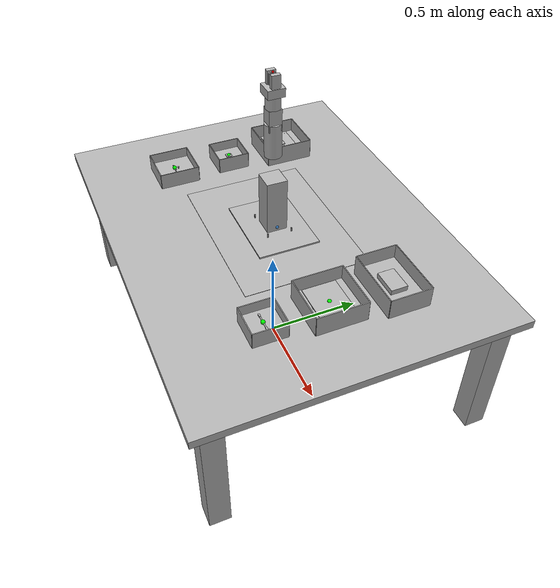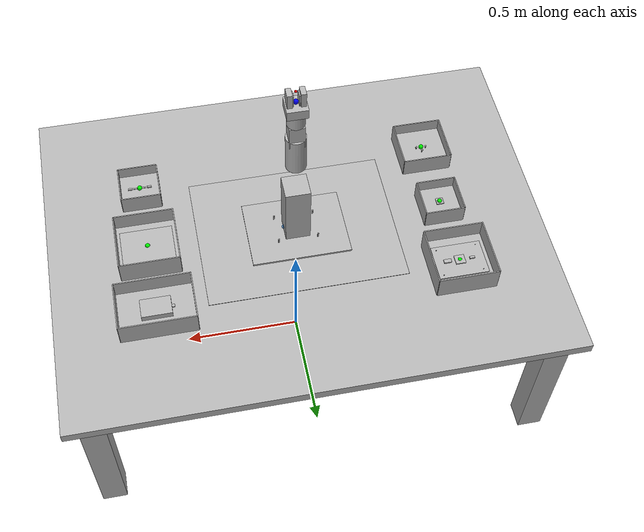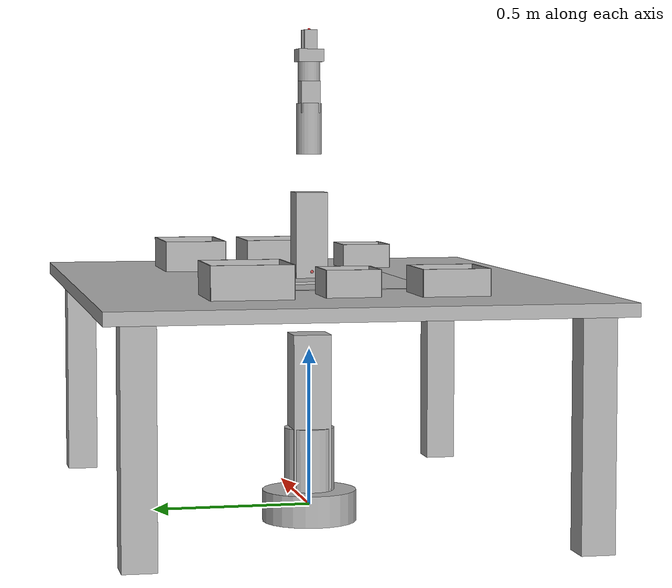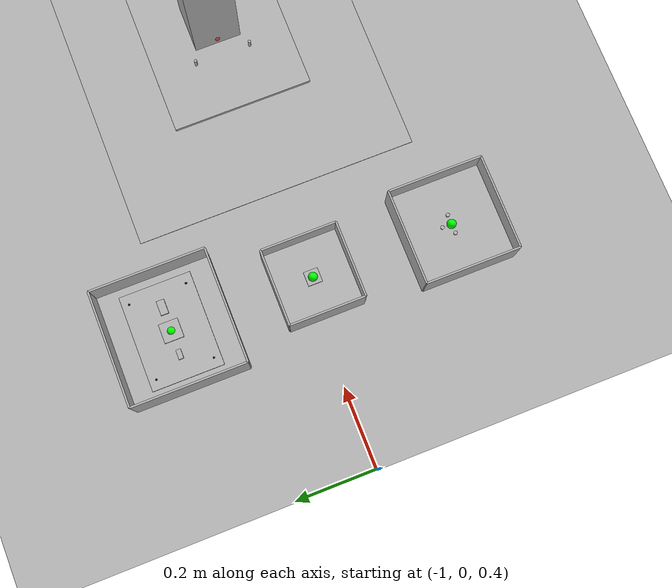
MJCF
<?xml version="1.0" ?>
<mujoco model="complete_assembly_system">
  <compiler angle="radian" coordinate="local" inertiafromgeom="true"/>
  <option timestep="0.002" gravity="0 0 -9.81" iterations="50" solver="Newton" tolerance="1e-10"/>

  <default>
    <joint armature="1" damping="10" limited="true"/>
    <geom contype="1" conaffinity="1" friction="1 0.5 0.5" rgba="0.7 0.7 0.7 1"/>
    <motor ctrllimited="true" ctrlrange="-1 1"/>
  </default>

  <visual>
    <headlight diffuse="0.5 0.5 0.5" ambient="0.3 0.3 0.3" specular="0 0 0"/>
    <rgba haze="0.15 0.25 0.35 1"/>
    <global azimuth="120" elevation="-20"/>
  </visual>

  <!-- Include the robot arm model -->
  <include file="robot_arm.xml"/>

  <!-- Include the assembly station model -->
  <include file="assembly_station.xml"/>

  <!-- Additional cameras for visualization -->
  <worldbody>
    <camera name="overview" pos="2 -2 3" xyaxes="0.5 0.866 0 -0.433 0.25 0.866" mode="fixed"/>
    <camera name="side_view" pos="0 -2.5 1.5" xyaxes="1 0 0 0 0 1" mode="fixed"/>
    <camera name="top_view" pos="0 0 3" xyaxes="1 0 0 0 1 0" mode="fixed"/>
    <camera name="gripper_view" pos="0 0 0" xyaxes="1 0 0 0 0 1" mode="track" body="gripper_mount"/>

    <!-- Additional lighting -->
    <light name="spotlight1" pos="1 1 3" dir="-0.5 -0.5 -1" diffuse="0.8 0.8 0.8" specular="0.2 0.2 0.2" cutoff="45"/>
    <light name="spotlight2" pos="-1 -1 3" dir="0.5 0.5 -1" diffuse="0.8 0.8 0.8" specular="0.2 0.2 0.2" cutoff="45"/>
  </worldbody>

  <!-- Contact pairs for precise interaction -->
  <contact>
    <pair geom1="gripper_left_pad" geom2="pcb_board" condim="6" friction="2 1 1"/>
    <pair geom1="gripper_right_pad" geom2="pcb_board" condim="6" friction="2 1 1"/>
    <pair geom1="gripper_left_pad" geom2="cpu_chip" condim="6" friction="2 1 1"/>
    <pair geom1="gripper_right_pad" geom2="cpu_chip" condim="6" friction="2 1 1"/>
    <pair geom1="gripper_left_pad" geom2="battery_pack" condim="6" friction="2 1 1"/>
    <pair geom1="gripper_right_pad" geom2="battery_pack" condim="6" friction="2 1 1"/>
    <pair geom1="gripper_left_pad" geom2="cover_top" condim="6" friction="2 1 1"/>
    <pair geom1="gripper_right_pad" geom2="cover_top" condim="6" friction="2 1 1"/>
    <pair geom1="gripper_left_pad" geom2="cable_body" condim="6" friction="2 1 1"/>
    <pair geom1="gripper_right_pad" geom2="cable_body" condim="6" friction="2 1 1"/>

    <!-- Screw interactions -->
    <pair geom1="gripper_left_pad" geom2="screw1_head" condim="6" friction="2 1 1"/>
    <pair geom1="gripper_right_pad" geom2="screw1_head" condim="6" friction="2 1 1"/>
    <pair geom1="gripper_left_pad" geom2="screw2_head" condim="6" friction="2 1 1"/>
    <pair geom1="gripper_right_pad" geom2="screw2_head" condim="6" friction="2 1 1"/>
    <pair geom1="gripper_left_pad" geom2="screw3_head" condim="6" friction="2 1 1"/>
    <pair geom1="gripper_right_pad" geom2="screw3_head" condim="6" friction="2 1 1"/>
    <pair geom1="gripper_left_pad" geom2="screw4_head" condim="6" friction="2 1 1"/>
    <pair geom1="gripper_right_pad" geom2="screw4_head" condim="6" friction="2 1 1"/>

    <!-- Component-to-component interactions -->
    <pair geom1="cpu_pins" geom2="cpu_socket" condim="6" friction="0.5 0.5 0.5"/>
    <pair geom1="battery_connector_male" geom2="battery_connector" condim="6" friction="0.8 0.8 0.8"/>
    <pair geom1="cable_connector1" geom2="cable_connector" condim="6" friction="0.8 0.8 0.8"/>

    <!-- Screw-to-hole interactions -->
    <pair geom1="screw1_shaft" geom2="mount_post1" condim="6" friction="0.5 0.5 0.5"/>
    <pair geom1="screw2_shaft" geom2="mount_post2" condim="6" friction="0.5 0.5 0.5"/>
    <pair geom1="screw3_shaft" geom2="mount_post3" condim="6" friction="0.5 0.5 0.5"/>
    <pair geom1="screw4_shaft" geom2="mount_post4" condim="6" friction="0.5 0.5 0.5"/>
  </contact>

  <!-- Equality constraints for assembled components -->
  <equality>
    <!-- These will be activated programmatically when components are assembled -->
  </equality>
</mujoco>

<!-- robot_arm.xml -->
<mujoco model="robot_arm">
  <compiler angle="radian" coordinate="local" inertiafromgeom="true"/>
  <option timestep="0.002" gravity="0 0 -9.81" iterations="50" solver="Newton" tolerance="1e-10"/>

  <default>
    <joint armature="1" damping="10" limited="true"/>
    <geom contype="1" conaffinity="1" friction="1 0.5 0.5" rgba="0.7 0.7 0.7 1"/>
    <motor ctrllimited="true" ctrlrange="-1 1"/>
  </default>

  <asset>
    <material name="arm_metal" rgba="0.8 0.8 0.9 1" metallic="0.9" roughness="0.3"/>
    <material name="joint_black" rgba="0.2 0.2 0.2 1" metallic="0.8" roughness="0.4"/>
    <material name="gripper_red" rgba="0.9 0.2 0.2 1" metallic="0.7" roughness="0.3"/>
    <material name="sensor_blue" rgba="0.2 0.2 0.9 1" metallic="0.5" roughness="0.2"/>
  </asset>

  <worldbody>
    <!-- Robot Base -->
    <body name="base" pos="0 0 0">
      <geom name="base_plate" type="cylinder" size="0.15 0.05" material="joint_black" mass="20"/>
      <inertial pos="0 0 0" mass="20" diaginertia="0.5 0.5 0.5"/>

      <!-- Joint 1: Shoulder Pan -->
      <body name="shoulder_pan" pos="0 0 0.1">
        <joint name="j1_shoulder_pan" type="hinge" axis="0 0 1" range="-3.14159 3.14159" damping="20"/>
        <geom name="shoulder_pan_link" type="cylinder" size="0.08 0.15" material="arm_metal" mass="5"/>

        <!-- Joint 2: Shoulder Tilt -->
        <body name="shoulder_tilt" pos="0 0 0.2">
          <joint name="j2_shoulder_tilt" type="hinge" axis="0 1 0" range="-2.356 0.785" damping="20"/>
          <geom name="shoulder_tilt_link" type="box" size="0.06 0.06 0.25" material="arm_metal" mass="4"/>

          <!-- Joint 3: Elbow -->
          <body name="elbow" pos="0 0 0.5">
            <joint name="j3_elbow" type="hinge" axis="0 1 0" range="-2.967 2.967" damping="15"/>
            <geom name="elbow_link" type="box" size="0.05 0.05 0.2" material="arm_metal" mass="3"/>

            <!-- Joint 4: Wrist Roll -->
            <body name="wrist_roll" pos="0 0 0.4">
              <joint name="j4_wrist_roll" type="hinge" axis="0 0 1" range="-3.14159 3.14159" damping="5"/>
              <geom name="wrist_roll_link" type="cylinder" size="0.04 0.08" material="joint_black" mass="1.5"/>

              <!-- Joint 5: Wrist Pitch -->
              <body name="wrist_pitch" pos="0 0 0.1">
                <joint name="j5_wrist_pitch" type="hinge" axis="0 1 0" range="-2.094 2.094" damping="5"/>
                <geom name="wrist_pitch_link" type="box" size="0.03 0.03 0.05" material="arm_metal" mass="1"/>

                <!-- Joint 6: Wrist Yaw -->
                <body name="wrist_yaw" pos="0 0 0.08">
                  <joint name="j6_wrist_yaw" type="hinge" axis="0 0 1" range="-3.14159 3.14159" damping="3"/>
                  <geom name="wrist_yaw_link" type="cylinder" size="0.035 0.03" material="joint_black" mass="0.8"/>

                  <!-- Gripper Mount -->
                  <body name="gripper_mount" pos="0 0 0.05">
                    <joint name="j7_gripper_base" type="hinge" axis="1 0 0" range="-3.14159 3.14159" damping="2"/>
                    <geom name="gripper_base" type="box" size="0.04 0.04 0.02" material="gripper_red" mass="0.5"/>

                    <!-- Camera Sensor -->
                    <site name="camera_site" pos="0 0 0.03" size="0.01" rgba="0 0 1 1"/>

                    <!-- Force/Torque Sensor -->
                    <site name="ft_sensor" pos="0 0 0" size="0.01" rgba="0 1 0 1"/>

                    <!-- Left Gripper Finger -->
                    <body name="gripper_left" pos="-0.025 0 0.04">
                      <joint name="gripper_left_joint" type="slide" axis="1 0 0" range="0 0.05" damping="1"/>
                      <geom name="gripper_left_finger" type="box" size="0.01 0.02 0.04" material="gripper_red" mass="0.1"/>
                      <geom name="gripper_left_pad" type="box" pos="0.01 0 0" size="0.005 0.015 0.03"
                            material="sensor_blue" contype="2" conaffinity="2" friction="2 1 1" mass="0.01"/>
                    </body>

                    <!-- Right Gripper Finger -->
                    <body name="gripper_right" pos="0.025 0 0.04">
                      <joint name="gripper_right_joint" type="slide" axis="-1 0 0" range="0 0.05" damping="1"/>
                      <geom name="gripper_right_finger" type="box" size="0.01 0.02 0.04" material="gripper_red" mass="0.1"/>
                      <geom name="gripper_right_pad" type="box" pos="-0.01 0 0" size="0.005 0.015 0.03"
                            material="sensor_blue" contype="2" conaffinity="2" friction="2 1 1" mass="0.01"/>
                    </body>

                    <!-- End Effector Reference Point -->
                    <site name="ee_site" pos="0 0 0.08" size="0.005" rgba="1 0 0 1"/>
                  </body>
                </body>
              </body>
            </body>
          </body>
        </body>
      </body>
    </body>
  </worldbody>

  <actuator>
    <!-- Joint Motors with Torque Limits -->
    <motor name="motor_j1" joint="j1_shoulder_pan" gear="100" ctrlrange="-2 2" forcerange="-100 100"/>
    <motor name="motor_j2" joint="j2_shoulder_tilt" gear="100" ctrlrange="-2 2" forcerange="-100 100"/>
    <motor name="motor_j3" joint="j3_elbow" gear="50" ctrlrange="-2 2" forcerange="-50 50"/>
    <motor name="motor_j4" joint="j4_wrist_roll" gear="20" ctrlrange="-2 2" forcerange="-20 20"/>
    <motor name="motor_j5" joint="j5_wrist_pitch" gear="20" ctrlrange="-2 2" forcerange="-20 20"/>
    <motor name="motor_j6" joint="j6_wrist_yaw" gear="20" ctrlrange="-2 2" forcerange="-20 20"/>
    <motor name="motor_j7" joint="j7_gripper_base" gear="10" ctrlrange="-2 2" forcerange="-10 10"/>

    <!-- Gripper Control -->
    <position name="gripper_left_pos" joint="gripper_left_joint" kp="200" ctrlrange="0 0.05" forcerange="-50 50"/>
    <position name="gripper_right_pos" joint="gripper_right_joint" kp="200" ctrlrange="0 0.05" forcerange="-50 50"/>
  </actuator>

  <sensor>
    <!-- Joint Position Sensors -->
    <jointpos name="j1_pos" joint="j1_shoulder_pan"/>
    <jointpos name="j2_pos" joint="j2_shoulder_tilt"/>
    <jointpos name="j3_pos" joint="j3_elbow"/>
    <jointpos name="j4_pos" joint="j4_wrist_roll"/>
    <jointpos name="j5_pos" joint="j5_wrist_pitch"/>
    <jointpos name="j6_pos" joint="j6_wrist_yaw"/>
    <jointpos name="j7_pos" joint="j7_gripper_base"/>
    <jointpos name="gripper_left_pos_sensor" joint="gripper_left_joint"/>
    <jointpos name="gripper_right_pos_sensor" joint="gripper_right_joint"/>

    <!-- Joint Velocity Sensors -->
    <jointvel name="j1_vel" joint="j1_shoulder_pan"/>
    <jointvel name="j2_vel" joint="j2_shoulder_tilt"/>
    <jointvel name="j3_vel" joint="j3_elbow"/>
    <jointvel name="j4_vel" joint="j4_wrist_roll"/>
    <jointvel name="j5_vel" joint="j5_wrist_pitch"/>
    <jointvel name="j6_vel" joint="j6_wrist_yaw"/>
    <jointvel name="j7_vel" joint="j7_gripper_base"/>

    <!-- Force Sensors -->
    <force name="gripper_left_force" site="gripper_left/geom"/>
    <force name="gripper_right_force" site="gripper_right/geom"/>
    <torque name="ft_torque" site="ft_sensor"/>

    <!-- Touch Sensors -->
    <touch name="gripper_left_touch" site="gripper_left/geom"/>
    <touch name="gripper_right_touch" site="gripper_right/geom"/>
  </sensor>
</mujoco>

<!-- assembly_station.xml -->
<mujoco model="assembly_station">
  <compiler angle="radian" coordinate="local" inertiafromgeom="true"/>

  <asset>
    <material name="table_wood" rgba="0.6 0.4 0.2 1" metallic="0.1" roughness="0.8"/>
    <material name="bin_plastic" rgba="0.3 0.3 0.8 0.9" metallic="0.2" roughness="0.6"/>
    <material name="pcb_green" rgba="0.1 0.6 0.1 1" metallic="0.3" roughness="0.5"/>
    <material name="metal_silver" rgba="0.8 0.8 0.8 1" metallic="0.95" roughness="0.2"/>
    <material name="plastic_black" rgba="0.1 0.1 0.1 1" metallic="0.1" roughness="0.7"/>
    <material name="battery_blue" rgba="0.1 0.1 0.8 1" metallic="0.3" roughness="0.5"/>
    <material name="cpu_gold" rgba="0.9 0.7 0.2 1" metallic="0.9" roughness="0.1"/>
    <material name="cable_red" rgba="0.8 0.1 0.1 1" metallic="0.2" roughness="0.6"/>
    <material name="marker_yellow" rgba="1 1 0 0.5" metallic="0" roughness="1"/>
    <material name="grid_gray" rgba="0.5 0.5 0.5 0.3" metallic="0" roughness="1"/>
    <texture name="grid" type="2d" builtin="checker" rgb1="0.7 0.7 0.7" rgb2="0.5 0.5 0.5" width="512" height="512"/>
  </asset>

  <worldbody>
    <!-- Assembly Table -->
    <body name="table" pos="0 0 0">
      <geom name="table_top" type="box" size="1.0 0.75 0.02" pos="0 0 0.7" material="table_wood" contype="1" conaffinity="1"/>
      <geom name="table_leg1" type="box" size="0.05 0.05 0.35" pos="-0.9 -0.65 0.35" material="metal_silver"/>
      <geom name="table_leg2" type="box" size="0.05 0.05 0.35" pos="0.9 -0.65 0.35" material="metal_silver"/>
      <geom name="table_leg3" type="box" size="0.05 0.05 0.35" pos="-0.9 0.65 0.35" material="metal_silver"/>
      <geom name="table_leg4" type="box" size="0.05 0.05 0.35" pos="0.9 0.65 0.35" material="metal_silver"/>

      <!-- Work Area Grid Markers -->
      <site name="work_center" pos="0 0 0.73" size="0.01" rgba="1 0 0 1"/>
      <geom name="work_grid" type="box" size="0.4 0.3 0.001" pos="0 0 0.721" material="grid_gray" contype="0"/>

      <!-- Component Bins -->
      <!-- PCB Bin -->
      <body name="pcb_bin" pos="-0.6 0.3 0.72">
        <geom name="pcb_bin_base" type="box" size="0.12 0.12 0.03" material="bin_plastic" contype="1"/>
        <geom name="pcb_bin_wall1" type="box" size="0.12 0.002 0.05" pos="0 -0.12 0.05" material="bin_plastic"/>
        <geom name="pcb_bin_wall2" type="box" size="0.12 0.002 0.05" pos="0 0.12 0.05" material="bin_plastic"/>
        <geom name="pcb_bin_wall3" type="box" size="0.002 0.12 0.05" pos="-0.12 0 0.05" material="bin_plastic"/>
        <geom name="pcb_bin_wall4" type="box" size="0.002 0.12 0.05" pos="0.12 0 0.05" material="bin_plastic"/>
        <site name="pcb_pickup" pos="0 0 0.04" size="0.01" rgba="0 1 0 1"/>
      </body>

      <!-- CPU Bin -->
      <body name="cpu_bin" pos="-0.6 0 0.72">
        <geom name="cpu_bin_base" type="box" size="0.08 0.08 0.03" material="bin_plastic" contype="1"/>
        <geom name="cpu_bin_wall1" type="box" size="0.08 0.002 0.04" pos="0 -0.08 0.04" material="bin_plastic"/>
        <geom name="cpu_bin_wall2" type="box" size="0.08 0.002 0.04" pos="0 0.08 0.04" material="bin_plastic"/>
        <geom name="cpu_bin_wall3" type="box" size="0.002 0.08 0.04" pos="-0.08 0 0.04" material="bin_plastic"/>
        <geom name="cpu_bin_wall4" type="box" size="0.002 0.08 0.04" pos="0.08 0 0.04" material="bin_plastic"/>
        <site name="cpu_pickup" pos="0 0 0.04" size="0.01" rgba="0 1 0 1"/>
      </body>

      <!-- Screw Bin -->
      <body name="screw_bin" pos="-0.6 -0.3 0.72">
        <geom name="screw_bin_base" type="box" size="0.1 0.1 0.03" material="bin_plastic" contype="1"/>
        <geom name="screw_bin_wall1" type="box" size="0.1 0.002 0.04" pos="0 -0.1 0.04" material="bin_plastic"/>
        <geom name="screw_bin_wall2" type="box" size="0.1 0.002 0.04" pos="0 0.1 0.04" material="bin_plastic"/>
        <geom name="screw_bin_wall3" type="box" size="0.002 0.1 0.04" pos="-0.1 0 0.04" material="bin_plastic"/>
        <geom name="screw_bin_wall4" type="box" size="0.002 0.1 0.04" pos="0.1 0 0.04" material="bin_plastic"/>
        <site name="screw_pickup" pos="0 0 0.04" size="0.01" rgba="0 1 0 1"/>
      </body>

      <!-- Battery Bin -->
      <body name="battery_bin" pos="0.6 0.3 0.72">
        <geom name="battery_bin_base" type="box" size="0.15 0.1 0.03" material="bin_plastic" contype="1"/>
        <geom name="battery_bin_wall1" type="box" size="0.15 0.002 0.05" pos="0 -0.1 0.05" material="bin_plastic"/>
        <geom name="battery_bin_wall2" type="box" size="0.15 0.002 0.05" pos="0 0.1 0.05" material="bin_plastic"/>
        <geom name="battery_bin_wall3" type="box" size="0.002 0.1 0.05" pos="-0.15 0 0.05" material="bin_plastic"/>
        <geom name="battery_bin_wall4" type="box" size="0.002 0.1 0.05" pos="0.15 0 0.05" material="bin_plastic"/>
        <site name="battery_pickup" pos="0 0 0.04" size="0.01" rgba="0 1 0 1"/>
      </body>

      <!-- Cover Bin -->
      <body name="cover_bin" pos="0.6 0 0.72">
        <geom name="cover_bin_base" type="box" size="0.12 0.12 0.03" material="bin_plastic" contype="1"/>
        <geom name="cover_bin_wall1" type="box" size="0.12 0.002 0.05" pos="0 -0.12 0.05" material="bin_plastic"/>
        <geom name="cover_bin_wall2" type="box" size="0.12 0.002 0.05" pos="0 0.12 0.05" material="bin_plastic"/>
        <geom name="cover_bin_wall3" type="box" size="0.002 0.12 0.05" pos="-0.12 0 0.05" material="bin_plastic"/>
        <geom name="cover_bin_wall4" type="box" size="0.002 0.12 0.05" pos="0.12 0 0.05" material="bin_plastic"/>
        <site name="cover_pickup" pos="0 0 0.04" size="0.01" rgba="0 1 0 1"/>
      </body>

      <!-- Cable Bin -->
      <body name="cable_bin" pos="0.6 -0.3 0.72">
        <geom name="cable_bin_base" type="box" size="0.08 0.08 0.03" material="bin_plastic" contype="1"/>
        <geom name="cable_bin_wall1" type="box" size="0.08 0.002 0.04" pos="0 -0.08 0.04" material="bin_plastic"/>
        <geom name="cable_bin_wall2" type="box" size="0.08 0.002 0.04" pos="0 0.08 0.04" material="bin_plastic"/>
        <geom name="cable_bin_wall3" type="box" size="0.002 0.08 0.04" pos="-0.08 0 0.04" material="bin_plastic"/>
        <geom name="cable_bin_wall4" type="box" size="0.002 0.08 0.04" pos="0.08 0 0.04" material="bin_plastic"/>
        <site name="cable_pickup" pos="0 0 0.04" size="0.01" rgba="0 1 0 1"/>
      </body>

      <!-- Assembly Fixture (central work area) -->
      <body name="fixture" pos="0 0 0.72">
        <geom name="fixture_base" type="box" size="0.2 0.15 0.01" material="metal_silver" contype="1"/>
        <!-- PCB mounting posts -->
        <geom name="mount_post1" type="cylinder" size="0.003 0.015" pos="-0.08 -0.06 0.015" material="metal_silver"/>
        <geom name="mount_post2" type="cylinder" size="0.003 0.015" pos="0.08 -0.06 0.015" material="metal_silver"/>
        <geom name="mount_post3" type="cylinder" size="0.003 0.015" pos="-0.08 0.06 0.015" material="metal_silver"/>
        <geom name="mount_post4" type="cylinder" size="0.003 0.015" pos="0.08 0.06 0.015" material="metal_silver"/>

        <!-- Assembly alignment markers -->
        <site name="pcb_placement" pos="0 0 0.02" size="0.01" rgba="0 0 1 0.5"/>
        <site name="cpu_placement" pos="0 0 0.04" size="0.005" rgba="1 0.5 0 0.5"/>
        <site name="battery_placement" pos="0.05 0 0.03" size="0.008" rgba="0 0.5 1 0.5"/>
        <site name="cable_placement" pos="-0.05 0 0.03" size="0.005" rgba="1 0 0 0.5"/>
      </body>
    </body>

    <!-- Assembly Components (initially in bins) -->
    <!-- Main PCB -->
    <body name="pcb" pos="-0.6 0.3 0.76">
      <freejoint/>
      <geom name="pcb_board" type="box" size="0.1 0.075 0.002" material="pcb_green" contype="2" conaffinity="2" mass="0.05"/>
      <!-- PCB mounting holes -->
      <site name="pcb_hole1" pos="-0.08 -0.06 0" size="0.003" rgba="0 0 0 1"/>
      <site name="pcb_hole2" pos="0.08 -0.06 0" size="0.003" rgba="0 0 0 1"/>
      <site name="pcb_hole3" pos="-0.08 0.06 0" size="0.003" rgba="0 0 0 1"/>
      <site name="pcb_hole4" pos="0.08 0.06 0" size="0.003" rgba="0 0 0 1"/>
      <!-- CPU socket -->
      <geom name="cpu_socket" type="box" size="0.02 0.02 0.003" pos="0 0 0.003" material="plastic_black" contype="2"/>
      <!-- Battery connector -->
      <geom name="battery_connector" type="box" size="0.015 0.008 0.004" pos="0.05 0 0.004" material="plastic_black" contype="2"/>
      <!-- Cable connector -->
      <geom name="cable_connector" type="box" size="0.01 0.005 0.004" pos="-0.05 0 0.004" material="plastic_black" contype="2"/>
    </body>

    <!-- CPU Chip -->
    <body name="cpu" pos="-0.6 0 0.76">
      <freejoint/>
      <geom name="cpu_chip" type="box" size="0.015 0.015 0.002" material="cpu_gold" contype="2" conaffinity="2" mass="0.01"/>
      <geom name="cpu_pins" type="box" size="0.012 0.012 0.001" pos="0 0 -0.002" material="metal_silver" contype="2"/>
    </body>

    <!-- Mounting Screws (4 pieces) -->
    <body name="screw1" pos="-0.6 -0.3 0.76">
      <freejoint/>
      <geom name="screw1_head" type="cylinder" size="0.004 0.002" material="metal_silver" contype="2" conaffinity="2" mass="0.002"/>
      <geom name="screw1_shaft" type="cylinder" size="0.002 0.01" pos="0 0 -0.01" material="metal_silver" contype="2"/>
    </body>

    <body name="screw2" pos="-0.58 -0.3 0.76">
      <freejoint/>
      <geom name="screw2_head" type="cylinder" size="0.004 0.002" material="metal_silver" contype="2" conaffinity="2" mass="0.002"/>
      <geom name="screw2_shaft" type="cylinder" size="0.002 0.01" pos="0 0 -0.01" material="metal_silver" contype="2"/>
    </body>

    <body name="screw3" pos="-0.62 -0.3 0.76">
      <freejoint/>
      <geom name="screw3_head" type="cylinder" size="0.004 0.002" material="metal_silver" contype="2" conaffinity="2" mass="0.002"/>
      <geom name="screw3_shaft" type="cylinder" size="0.002 0.01" pos="0 0 -0.01" material="metal_silver" contype="2"/>
    </body>

    <body name="screw4" pos="-0.6 -0.28 0.76">
      <freejoint/>
      <geom name="screw4_head" type="cylinder" size="0.004 0.002" material="metal_silver" contype="2" conaffinity="2" mass="0.002"/>
      <geom name="screw4_shaft" type="cylinder" size="0.002 0.01" pos="0 0 -0.01" material="metal_silver" contype="2"/>
    </body>

    <!-- Battery Pack -->
    <body name="battery" pos="0.6 0.3 0.76">
      <freejoint/>
      <geom name="battery_pack" type="box" size="0.06 0.04 0.015" material="battery_blue" contype="2" conaffinity="2" mass="0.15"/>
      <geom name="battery_connector_male" type="box" size="0.012 0.006 0.003" pos="-0.06 0 0" material="plastic_black" contype="2"/>
    </body>

    <!-- Plastic Cover -->
    <body name="cover" pos="0.6 0 0.76">
      <freejoint/>
      <geom name="cover_top" type="box" size="0.105 0.08 0.002" material="plastic_black" contype="2" conaffinity="2" mass="0.03"/>
      <!-- Snap fit tabs -->
      <geom name="cover_tab1" type="box" size="0.003 0.01 0.005" pos="-0.1 0 -0.005" material="plastic_black" contype="2"/>
      <geom name="cover_tab2" type="box" size="0.003 0.01 0.005" pos="0.1 0 -0.005" material="plastic_black" contype="2"/>
      <geom name="cover_tab3" type="box" size="0.01 0.003 0.005" pos="0 -0.075 -0.005" material="plastic_black" contype="2"/>
      <geom name="cover_tab4" type="box" size="0.01 0.003 0.005" pos="0 0.075 -0.005" material="plastic_black" contype="2"/>
    </body>

    <!-- Ribbon Cable -->
    <body name="cable" pos="0.6 -0.3 0.76">
      <freejoint/>
      <geom name="cable_body" type="box" size="0.04 0.003 0.001" material="cable_red" contype="2" conaffinity="2" mass="0.005"/>
      <geom name="cable_connector1" type="box" size="0.008 0.004 0.003" pos="-0.04 0 0" material="plastic_black" contype="2"/>
      <geom name="cable_connector2" type="box" size="0.008 0.004 0.003" pos="0.04 0 0" material="plastic_black" contype="2"/>
    </body>
  </worldbody>
</mujoco>
